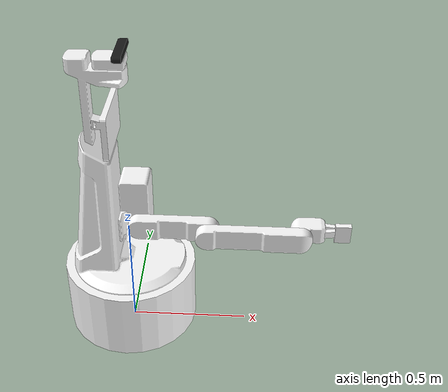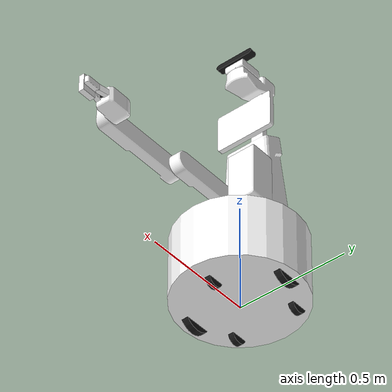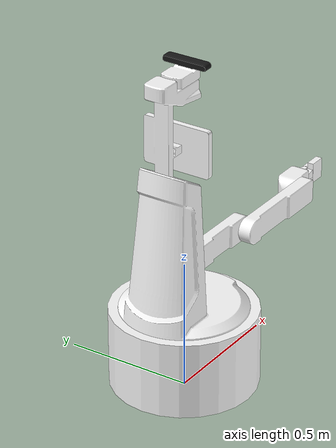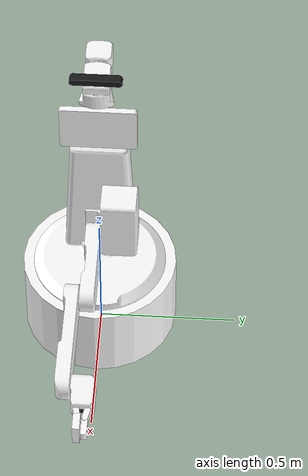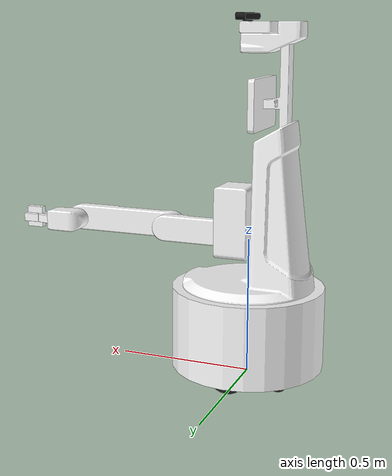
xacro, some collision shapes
<?xml version="1.0" ?>
<robot name="korus" xmlns:xacro="http://www.ros.org/wiki/xacro">
  <xacro:include filename="$(find korus_meta)/resources/urdf/components/diff_drive_base.urdf.xacro"/>
  <xacro:include filename="$(find korus_meta)/resources/urdf/components/upper_body.urdf.xacro"/>
  <xacro:include filename="$(find korus_meta)/resources/urdf/components/arm.urdf.xacro"/>

  <!-- ************************ Base model ************************* -->
  <xacro:diff_drive_base parent="base_footprint" body_mount_link="base_link"/>

  <!-- ************************ Body model ************************* -->
  <xacro:upper_body body_mount_link="base_link" arm_mount_link="torso_lift_link"/>

  <!-- ************************ Arm model ************************* -->
  <xacro:arm arm_mount_link="torso_lift_link"/>
</robot>

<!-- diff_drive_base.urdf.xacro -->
<robot xmlns:xacro="http://www.ros.org/wiki/xacro">
  <xacro:include filename="$(find korus_meta)/resources/urdf/components/materials.urdf.xacro"/>
  <xacro:include filename="$(find korus_meta)/resources/urdf/components/hokuyo_lx30_laser.urdf.xacro"/>

  <!-- ************************** Properties ************************** -->
  <xacro:property name="wheel_bias" value="0.450"/>
  <xacro:property name="wheel_radius" value="0.075"/>
  <xacro:property name="caster_wheel_bias" value="0.294"/>
  <xacro:property name="caster_wheel_radius" value="0.0375"/>

  <!-- ************************** Wheel macros ************************** -->
	<xacro:macro name="drive_wheel" params="name parent length radius off_x off_y off_z">
    <joint name="${name}" type="continuous">
      <parent link="${parent}"/>
      <child link="${name}_link"/>
      <origin rpy="0 0 ${pi/2}" xyz="${off_x} ${off_y} ${off_z}"/>
      <limit effort="48.0" velocity="0.5"/>
    </joint>
	  <link name="${name}_link">
	    <visual>
	      <geometry>
	        <cylinder length="${length}" radius="${radius}"/>
	      </geometry>
	      <origin rpy="0 ${pi/2} 0" xyz="0 0 0"/>
	      <material name="black">
	        <color rgba="0.1 0.1 0.1 1"/>
	      </material>
	    </visual>
	  </link>
	</xacro:macro>
	<xacro:macro name="caster_wheel" params="name parent length radius off_x off_y off_z">
    <joint name="${name}_joint" type="fixed">
      <parent link="${parent}"/>
      <child link="${name}_link"/>
      <origin rpy="0 0 ${pi/2}" xyz="${off_x} ${off_y} ${off_z}"/>
    </joint>
    <link name="${name}_link">
      <visual>
        <geometry>
          <cylinder length="${length}" radius="${radius}"/>
        </geometry>
        <origin rpy="0 ${pi/2} 0" xyz="0 0 0"/>
        <material name="black">
          <color rgba="0.1 0.1 0.1 1"/>
        </material>
      </visual>
    </link>
  </xacro:macro>

  <!-- ************************** Differential drive base macro ************************** -->
  <xacro:macro name="diff_drive_base" params="parent body_mount_link">
    <link name="${parent}"/>
		<joint name="base_joint" type="fixed">
		  <parent link="${parent}"/>
		  <child link="${body_mount_link}"/>
		  <origin rpy="0 0 0" xyz="0.0 0.0 0.075"/>
		</joint>
		<link name="${body_mount_link}">
		  <visual>
		    <geometry>
		      <mesh filename="package://korus_meta/resources/meshes/base_test_model.dae" />
		    </geometry>
		    <origin xyz="0.0 0.0 0.1045" rpy="0 0 0"/>
		    <xacro:insert_block name="material_white"/>
		  </visual>
		  <collision>
	      <geometry>
	        <cylinder length="0.299" radius="0.278"/>
	      </geometry>
	      <origin xyz="0.0 0.0 0.1045" rpy="0 0 0"/>
		  </collision>
		</link>
		<xacro:drive_wheel name="wheel_left" parent="${body_mount_link}" length="0.03" radius="${wheel_radius}" off_x="0.0" off_y="${wheel_bias/2}" off_z="0.0"/>
		<xacro:drive_wheel name="wheel_right" parent="${body_mount_link}" length="0.03" radius="${wheel_radius}" off_x="0.0" off_y="-${wheel_bias/2}" off_z="0.0"/>
		<xacro:caster_wheel name="caster_front" parent="${body_mount_link}" length="0.025" radius="${caster_wheel_radius}" off_x="0.160" off_y="0.0" off_z="-0.0375"/>
		<xacro:caster_wheel name="caster_back_left" parent="${body_mount_link}" length="0.025" radius="${caster_wheel_radius}" off_x="-0.160" off_y="${caster_wheel_bias/2}" off_z="-0.0375"/>
		<xacro:caster_wheel name="caster_back_right" parent="${body_mount_link}" length="0.025" radius="${caster_wheel_radius}" off_x="-0.160" off_y="-${caster_wheel_bias/2}" off_z="-0.0375"/>

	  <!-- ************************** Sensors ************************** -->
	  <xacro:hokuyo_lx30_laser name="laser" parent="base" ros_topic="laser_scan"
	                           update_rate="20" min_angle="${-100.94*pi/180}" max_angle="${100.94*pi/180}">
		  <origin xyz="0.210 0.0 0.21785" rpy="0 0 0"/>
	  </xacro:hokuyo_lx30_laser>

	  <joint name="sonar_front_left" type="fixed">
	    <parent link="${body_mount_link}"/>
	    <child link="sonar_front_left_link"/>
	    <origin xyz="0.12411 0.21496 0.09881" rpy="0 ${-20*pi/180} ${60*pi/180}"/>
	  </joint>
	  <link name="sonar_front_left_link"/>

	  <joint name="sonar_front_middle" type="fixed">
	    <parent link="${body_mount_link}"/>
	    <child link="sonar_front_middle_link"/>
	    <origin xyz="0.24822 0.0 0.09881" rpy="0 ${-20*pi/180} 0"/>
	  </joint>
	  <link name="sonar_front_middle_link"/>

	  <joint name="sonar_front_right" type="fixed">
	    <parent link="${body_mount_link}"/>
	    <child link="sonar_front_right_link"/>
	    <origin xyz="0.12411 -0.21496 0.09881" rpy="0 ${-20*pi/180} ${-60*pi/180}"/>
	  </joint>
	  <link name="sonar_front_right_link"/>

	     <joint name="sonar_back_left" type="fixed">
      <parent link="${body_mount_link}"/>
      <child link="sonar_back_left_link"/>
      <origin xyz="-0.12411 0.21496 0.09881" rpy="0 ${-20*pi/180} ${120*pi/180}"/>
    </joint>
    <link name="sonar_back_left_link"/>

    <joint name="sonar_back_middle" type="fixed">
      <parent link="${body_mount_link}"/>
      <child link="sonar_back_middle_link"/>
      <origin xyz="-0.24822 0.0 0.09881" rpy="0 ${-20*pi/180} ${-180*pi/180}"/>
    </joint>
    <link name="sonar_back_middle_link"/>

    <joint name="sonar_back_right" type="fixed">
      <parent link="${body_mount_link}"/>
      <child link="sonar_back_right_link"/>
      <origin xyz="-0.12411 -0.21496 0.09881" rpy="0 ${-20*pi/180} ${-120*pi/180}"/>
    </joint>
    <link name="sonar_back_right_link"/>

    <joint name="gyro" type="fixed">
      <parent link="${body_mount_link}"/>
      <child link="gyro_link"/>
      <origin xyz="0.080 0.165 0.040" rpy="0 0 0"/>
    </joint>
    <link name="gyro_link"/>

  </xacro:macro>
</robot>

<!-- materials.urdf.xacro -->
<robot xmlns:xacro="http://www.ros.org/wiki/xacro">

	<!-- ************************ Properties ************************** -->
	<xacro:property name="pi" value="3.1415926535897931" />
	<xacro:property name="rad" value="0.0174532925199" /> <!-- pi/180 -->
	<xacro:property name="material_white">
	  <material name="white">
	    <color rgba="1 1 1 1"/>
	  </material>
	</xacro:property>
	<xacro:property name="material_orange">
	  <material name="orange">
	    <color rgba="1.0 0.7 0.0 1"/>
	  </material>
	</xacro:property>
	<xacro:property name="material_red">
	  <material name="red">
	    <color rgba="1.0 0.0 0.0 1"/>
	  </material>
	</xacro:property>
	<xacro:property name="material_grey_blue">
	  <material name="grey_blue">
	    <color rgba="0.4 0.4 1.0 1"/>
	  </material>
	</xacro:property>
	<xacro:property name="material_blue">
	  <material name="blue">
	    <color rgba="0.0 0.0 1.0 1"/>
	  </material>
	</xacro:property>
	<xacro:property name="material_green">
	  <material name="green">
	    <color rgba="0 .8 0 1"/>
	  </material>
	</xacro:property>
	<xacro:property name="material_grey">
	  <material name="grey">
	    <color rgba="0.7 0.7 0.7 1.0"/>
	  </material>
	</xacro:property>
	<xacro:property name="material_black">
	  <material name="black">
	    <color rgba="0.1 0.1 0.1 1"/>
	  </material>
	</xacro:property>
</robot>

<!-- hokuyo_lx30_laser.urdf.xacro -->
<!--  Move this to a ycs_device_descriptions package -->
<robot xmlns:xacro="http://ros.org/wiki/xacro">
  <xacro:macro name="hokuyo_lx30_laser" params="name parent *origin ros_topic update_rate min_angle max_angle">
    <joint name="${name}_joint" type="fixed">
      <axis xyz="0 1 0" />
      <insert_block name="origin" />
      <parent link="${parent}_link"/>
      <child link="${name}_link"/>
    </joint>
    <link name="${name}_link" type="laser">
      <inertial>
        <mass value="0.001" />
        <origin xyz="0 0 0" rpy="0 0 0" />
        <inertia ixx="0.0001" ixy="0" ixz="0" iyy="0.000001" iyz="0" izz="0.0001" />
      </inertial>
<!-- visual and collision is commented out, since the laser is inside the base -->
    </link>
  </xacro:macro>
</robot>

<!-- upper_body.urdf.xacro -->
<robot xmlns:xacro="http://www.ros.org/wiki/xacro">
  <xacro:include filename="$(find korus_meta)/resources/urdf/components/materials.urdf.xacro"/>

  <!-- ************************** Robot body macro ************************** -->
  <xacro:macro name="upper_body" params="body_mount_link arm_mount_link">

    <!-- ************************** Torso *************************** -->
	  <joint name="torso_turn" type="revolute">
	    <parent link="${body_mount_link}"/>
	    <child link="torso_link"/>
	    <origin rpy="0 0 0" xyz="0.0 0.0 0.2665"/>
	    <axis xyz="0 0 1"/>
	    <limit effort="205.0" lower="-${186*rad}" upper="${160*rad}" velocity="${88.7*rad}"/>
	  </joint>
	  <link name="torso_link">
	    <visual>
	      <geometry>
          <mesh filename="package://korus_meta/resources/meshes/turret.dae" />
	      </geometry>
        <origin xyz="0.0 0.0 0.45885" rpy="0 0 0"/>
	      <xacro:insert_block name="material_white" />
	    </visual>
      <collision> <!-- torso turn disk -->
         <geometry>
          <cylinder length="0.025" radius="0.278"/>
        </geometry>
        <origin xyz="0.0 0.0 0.0" rpy="0 0 0"/>
      </collision>
      <collision> <!-- back -->
        <geometry>
           <box size="0.204 0.25746 0.57888" />
        </geometry>
        <origin xyz="-0.13786 0.0 0.30194" rpy="0 0 0"/>
      </collision>
      <collision> <!-- neck -->
        <geometry>
          <box size="0.030 0.060 0.23262"/>
        </geometry>
        <origin xyz="-0.12536  0.0 0.70769" rpy="0 0 0"/>
      </collision>
      <collision> <!-- tablet -->
        <geometry>
          <box size="0.022 0.270 0.1812"/>
        </geometry>
        <origin xyz="-0.04036 0.0 0.6495" rpy="0 0 0"/>
      </collision>
      <collision> <!-- head -->
        <geometry>
          <box size="0.227 0.11872 0.0645" />
        </geometry>
        <origin xyz="-0.07586 0.0 0.85625" rpy="0 0 0"/>
      </collision>
      <collision> <!-- stargazer -->
        <geometry>
          <box size="0.09065 0.090 0.0417" />
        </geometry>
        <origin xyz="-0.14403 0.0 0.909" rpy="0 0 0"/>
      </collision>
	  </link>

    <!-- (Fixed) Reference torso for motion retargeting -->
    <joint name="torso_mo_ret_joint" type="fixed">
      <parent link="${body_mount_link}"/>
      <child link="torso_mo_ret_link"/>
      <origin rpy="0 0 0" xyz="0.0 0.0 0.2665"/>
      <axis xyz="0 0 1"/>
    </joint>
    <link name="torso_mo_ret_link"/>

	  <joint name="turret" type="fixed">
	    <parent link="torso_link"/>
	    <child link="turret_link"/>
	    <origin xyz="-0.13786 0.0 0.0" rpy="0 0 0"/>
	  </joint>
	  <link name="turret_link"/>

	  <joint name="torso_lift_offset" type="fixed">
	    <parent link="turret_link"/>
	    <child link="torso_lift_offset_link"/>
	    <origin xyz="0.10361 0.010 0.170" rpy="0 0 0"/>
	  </joint>
	  <link name="torso_lift_offset_link"/>

	  <joint name="torso_lift" type="prismatic">
	    <parent link="torso_lift_offset_link"/>
	    <child link="${arm_mount_link}"/>
	    <origin xyz="0 0 0" rpy="0 0 0"/>
	    <axis xyz="0 0 1"/>
	    <limit effort="26.0" lower="-0.002" upper="0.1750" velocity="0.038"/>
	  </joint>
	  <link name="${arm_mount_link}"/>

    <!-- ************************** Neck with tablet ************************** -->
	  <joint name="neck" type="fixed">
	    <parent link="turret_link"/>
	    <child link="neck_link"/>
	    <origin xyz="0.0125 0.0 0.59138" rpy="0 0 0"/>
	  </joint>
	  <link name="neck_link"/>

    <joint name="tablet" type="fixed">
      <parent link="neck_link"/>
      <child link="tablet_link"/>
      <origin xyz="0.085 0.0 0.05812" rpy="0 0 0"/>
    </joint>
    <link name="tablet_link"/>

	  <!-- ************************** Head with ASUS Xtion Pro Live and Stargazer ************************** -->
    <joint name="head" type="fixed">
      <parent link="neck_link"/>
      <child link="head_link"/>
      <origin xyz="0.0 0.0 0.23262" rpy="0 0 0"/>
    </joint>
    <link name="head_link"/>

    <joint name="stargazer" type="fixed">
      <parent link="head_link"/>
      <child link="stargazer_link"/>
      <origin xyz="-0.040 0.0 0.1025" rpy="0 0 ${pi}"/>
    </joint>
    <link name="stargazer_link"/>

    <joint name="head_pan" type="revolute">
      <parent link="head_link"/>
      <child link="head_pan_link"/>
      <origin xyz="0.133 0.0 0.0645" rpy="0 0 0"/>
      <axis xyz="0 0 1"/>
      <limit effort="9.0" lower="${-137*rad}" upper="${137*rad}" velocity="${476*rad}"/>
    </joint>
    <link name="head_pan_link">
      <visual>
        <geometry>
          <mesh filename="package://korus_meta/resources/meshes/head_pan.dae" />
        </geometry>
        <origin xyz="-0.0339 0.0 0.02085" rpy="0.0 0.0 0.0"/>
        <xacro:insert_block name="material_white"/>
      </visual>
      <collision>
        <geometry>
          <box size="0.1122 0.090 0.0417"/>
        </geometry>
        <origin xyz="-0.0339 0.0 0.02085" rpy="0.0 0.0 0.0"/>
      </collision>
    </link>

    <joint name="head_tilt" type="revolute">
      <parent link="head_pan_link"/>
      <child link="head_tilt_link"/>
      <origin xyz="0.01 0.0 0.025" rpy="${pi/2} 0 0"/> <!-- x original 0.013 -->
      <axis xyz="0 0 1"/>
      <limit effort="9.0" lower="${-92*rad}" upper="${32*rad}" velocity="${476*rad}"/>
    </joint>
    <link name="head_tilt_link"/>

    <joint name="sensor_3d" type="fixed">
      <parent link="head_tilt_link"/>
      <child link="sensor_3d_link"/>
      <!-- adds to yaw, because the xtion is mounted on its surface which is inclined (approx. 2 deg) -->
      <origin xyz="0.0 0.0 0.0" rpy="${-pi/2} 0 0.034"/>
    </joint>
    <link name="sensor_3d_link">
      <visual>
        <geometry>
           <mesh filename="package://korus_meta/resources/meshes/xtionpro_w_mount.dae"/>
        </geometry>
        <origin xyz="0.0 0.0 0.0225" rpy="0 0 0" />
        <xacro:insert_block name="material_black"/>
      </visual>
      <collision>
        <origin xyz="0.0 0.0032 0.0291" rpy="0 0 0" />
        <geometry>
          <box size="0.036 0.180 0.0298"/>
        </geometry>
      </collision>
    </link>

    <joint name="sensor_3d_fixed" type="fixed"> <!-- used for head pose control -->
      <parent link="head_link"/>
      <child link="sensor_3d_fixed_link"/>
      <origin xyz="0.143 0.0 0.1225" rpy="0 0 0"/>
    </joint>
    <link name="sensor_3d_fixed_link"/>

    <joint name="sensor_3d_depth_joint" type="fixed">
      <origin xyz="0.019 0.0435 0.0315" rpy="0 0 0" />
      <parent link="sensor_3d_link" />
      <child link="sensor_3d_depth_frame" />
    </joint>
    <link name="sensor_3d_depth_frame"/>

    <joint name="sensor_3d_depth_optical_joint" type="fixed">
      <origin xyz="0 0 0" rpy="${-pi/2} 0 ${-pi/2}" />
      <parent link="sensor_3d_depth_frame" />
      <child link="sensor_3d_depth_optical_frame" />
    </joint>
    <link name="sensor_3d_depth_optical_frame"/>

    <joint name="sensor_3d_rgb_joint" type="fixed">
      <origin xyz="0.0 0.015 0.0315" rpy="0 0 0" />
      <parent link="sensor_3d_link" />
      <child link="sensor_3d_rgb_frame" />
    </joint>
    <link name="sensor_3d_rgb_frame"/>

    <joint name="sensor_3d_rgb_optical_joint" type="fixed">
      <origin xyz="0 0 0" rpy="${-pi/2} 0 ${-pi/2}" />
      <parent link="sensor_3d_rgb_frame" />
      <child link="sensor_3d_rgb_optical_frame" />
    </joint>
    <link name="sensor_3d_rgb_optical_frame"/>
  </xacro:macro>
</robot>

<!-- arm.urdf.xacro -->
<robot xmlns:xacro="http://www.ros.org/wiki/xacro">
  <xacro:include filename="$(find korus_meta)/resources/urdf/components/materials.urdf.xacro"/>

  <!-- ************************ Arm macro ************************* -->
  <xacro:macro name="arm" params="arm_mount_link">
    <joint name="arm_mount" type="fixed">
      <parent link="${arm_mount_link}"/>
      <child link="shoulder_link"/>
      <origin xyz="0.08225 0.0 0.0" rpy="${pi/2} 0.0 0.0"/>
    </joint>
    <link name="shoulder_link">
      <visual>
        <geometry>
          <mesh filename="package://korus_meta/resources/meshes/shoulder.dae" />
        </geometry>
        <origin xyz="-0.020 0.070 -0.034" rpy="${-pi/2} 0 0"/>
        <xacro:insert_block name="material_white"/>
      </visual>
      <collision>
        <geometry>
          <box size="0.122 0.254 0.131"/>
        </geometry>
        <origin xyz="-0.020 0.070 -0.0655" rpy="0 0 0"/>
       </collision>
    </link>

	  <joint name="shoulder" type="revolute">
	    <parent link="shoulder_link"/>
	    <child link="upper_arm_link"/>
      <origin xyz="0 0 0" rpy="0 0 0"/>
	    <axis xyz="0 0 1"/>
	    <limit effort="250.0" lower="${-70*rad}" upper="${92*rad}" velocity="${73*rad}"/>
	  </joint>
	  <link name="upper_arm_link">
	    <visual>
	      <geometry>
          <mesh filename="package://korus_meta/resources/meshes/upper_arm.dae" />
	      </geometry>
	      <origin xyz="0.1425 0.001 0.0275" rpy="${pi/2} ${pi} ${pi/2}"/>
	      <xacro:insert_block name="material_white" />
	    </visual>
      <collision>
        <geometry>
          <box size="0.378 0.095 0.055"/>
        </geometry>
        <origin xyz="0.145 0.0 0.028" rpy="0 0 0"/>
       </collision>
	  </link>

	  <joint name="elbow" type="revolute">
	    <parent link="upper_arm_link"/>
	    <child link="lower_arm_link"/>
	    <origin xyz="0.283 0.0 0.055" rpy="0 0 0"/>
	    <axis xyz="0 0 1"/>
	    <limit effort="200.0" lower="${-180*rad}" upper="${92*rad}" velocity="${91*rad}"/>
	  </joint>
	  <link name="lower_arm_link">
	    <visual>
	      <geometry>
          <mesh filename="package://korus_meta/resources/meshes/lower_arm.dae" />
	      </geometry>
	      <origin xyz="0.19 0.002 0.027" rpy="${pi/2} ${pi} ${pi/2}"/>
	      <xacro:insert_block name="material_white" />
	    </visual>
      <collision>
        <geometry>
          <box size="0.477 0.095 0.057"/>
        </geometry>
        <origin xyz="0.19426 0.00 0.0285" rpy="0 0 0"/>
      </collision>
	  </link>

	  <joint name="wrist" type="revolute">
	    <parent link="lower_arm_link"/>
	    <child link="wrist_link"/>
	    <origin xyz="0.382 0.0 0.0" rpy="0 0 0"/>
	    <axis xyz="0 0 1"/>
	    <limit effort="51.0" lower="${-100*rad}" upper="${100*rad}" velocity="${72.5*rad}"/>
	  </joint>
	  <link name="wrist_link"/>

  	<!--   Endeffector (gripper)  -->
	  <joint name="palm" type="fixed">
	    <parent link="wrist_link"/>
	    <child link="palm_link"/>
	    <origin xyz="0.0 0.0 -0.045" rpy="0 0 0"/>
	  </joint>
	  <link name="palm_link">
	    <visual>
	      <geometry>
          <mesh filename="package://korus_meta/resources/meshes/palm.dae" />
	      </geometry>
	      <origin xyz="0.0395 0.001 0.0025" rpy="${-pi/2} 0 0"/>
        <xacro:insert_block name="material_white"/>
      </visual>
      <collision>
        <geometry>
          <cylinder length="0.0854" radius="0.038"/>
        </geometry>
        <origin xyz="0.0 0.0 0.0035" rpy="0 0 0"/>
      </collision>
      <collision>
        <geometry>
          <box size="0.1044 0.077 0.0804"/>
        </geometry>
        <origin xyz="0.0522 0.0 0.0" rpy="0 0 0"/>
      </collision>
	  </link>

    <joint name="gripper_center" type="fixed">
      <parent link="palm_link"/>
      <child link="gripper_center_link"/>
      <origin xyz="0.15 0.0 0.0" rpy="0 0 0"/>
    </joint>
    <link name="gripper_center_link"/>

	  <joint name="gripper" type="revolute">
	    <parent link="palm_link"/>
	    <child link="gripper_link"/>
	    <origin xyz="0.08 0.0 0.0" rpy="${-pi/2} 0 0"/>
	    <axis xyz="0 0 1"/>
	    <limit effort="33.4" lower="${-2*rad}" upper="${78*rad}" velocity="${80.8*rad}"/>
	  </joint>
	  <link name="gripper_link"/>

    <joint name="finger_left_knuckle_1" type="revolute">
      <parent link="palm_link"/>
      <child link="finger_left_knuckle_1_link"/>
      <origin xyz="0.0925 0.0 -0.022" rpy="${pi/2} ${-10*rad} 0"/>
      <axis xyz="0 0 1"/>
      <limit effort="33.4" lower="${-78*rad}" upper="${2*rad}" velocity="${80.8*rad}"/>
    </joint>
	  <link name="finger_left_knuckle_1_link">
      <visual>
        <geometry>
          <mesh filename="package://korus_meta/resources/meshes/finger01.dae" />
        </geometry>
	      <origin xyz="0.02975 0.0 0.0" rpy="0 0 0"/>
	      <xacro:insert_block name="material_white"/>
	    </visual>
      <collision>
        <geometry>
          <box size="0.0595 0.0247 0.0306"/>
        </geometry>
        <origin xyz="0.02975 0.0 0.0" rpy="0 0 0"/>
      </collision>
	  </link>
    <joint name="finger_left_knuckle_2" type="revolute">
      <parent link="finger_left_knuckle_1_link"/>
      <child link="finger_left_knuckle_2_link"/>
      <origin xyz="0.051 0.0 0.0" rpy="0 0 ${-10*rad}"/>
      <axis xyz="0 0 1"/>
      <limit effort="33.4" lower="${-2*rad}" upper="${78*rad}" velocity="${80.8*rad}"/>
    </joint>
    <link name="finger_left_knuckle_2_link">
      <visual>
        <geometry>
          <mesh filename="package://korus_meta/resources/meshes/finger02.dae" />
        </geometry>
        <origin xyz="0.0325 0.0 0.0" rpy="0 0 0"/>
        <xacro:insert_block name="material_white"/>
      </visual>
      <collision>
        <geometry>
          <box size="0.065 0.0247 0.0306"/>
        </geometry>
        <origin xyz="0.0325 0.0 0.0" rpy="0 0 0"/>
      </collision>
    </link>
    <joint name="finger_left_tip" type="fixed">
      <parent link="finger_left_knuckle_2_link"/>
      <child link="finger_left_tip_link"/>
      <origin xyz="0.065 0.0 0.0" rpy="0 0 0"/>
    </joint>
    <link name="finger_left_tip_link"/>

    <joint name="finger_right_knuckle_1" type="revolute">
      <parent link="palm_link"/>
      <child link="finger_right_knuckle_1_link"/>
      <origin xyz="0.0925 0.0 0.022" rpy="${-pi/2} ${10*rad} 0.0"/>
      <axis xyz="0 0 1"/>
      <limit effort="33.4" lower="${-78*rad}" upper="${2*rad}" velocity="${80.8*rad}"/>
    </joint>
    <link name="finger_right_knuckle_1_link">
      <visual>
        <geometry>
          <mesh filename="package://korus_meta/resources/meshes/finger01.dae" />
        </geometry>
        <origin xyz="0.02975 0.0 0.0" rpy="0 0 0"/>
        <xacro:insert_block name="material_white"/>
      </visual>
      <collision>
        <geometry>
          <box size="0.0595 0.0247 0.0306"/>
        </geometry>
        <origin xyz="0.02975 0.0 0.0" rpy="0 0 0"/>
      </collision>
    </link>
    <joint name="finger_right_knuckle_2" type="revolute">
      <parent link="finger_right_knuckle_1_link"/>
      <child link="finger_right_knuckle_2_link"/>
      <origin xyz="0.051 0.0 0.0" rpy="0 0 ${-10*rad}"/>
      <axis xyz="0 0 1"/>
      <limit effort="33.4" lower="${-2*rad}" upper="${78*rad}" velocity="${80.8*rad}"/>
    </joint>
    <link name="finger_right_knuckle_2_link">
      <visual>
        <geometry>
          <box size="0.065 0.0247 0.08"/>
        </geometry>
        <origin xyz="0.0325 0.0 0.0" rpy="0 0 0"/>
        <xacro:insert_block name="material_white"/>
      </visual>
      <collision>
        <geometry>
          <box size="0.065 0.0247 0.08"/>
        </geometry>
        <origin xyz="0.0325 0.0 0.0" rpy="0 0 0"/>
      </collision>
    </link>
    <joint name="finger_right_tip" type="fixed">
      <parent link="finger_right_knuckle_2_link"/>
      <child link="finger_right_tip_link"/>
      <origin xyz="0.065 0.0 0.0" rpy="0 0 0"/>
    </joint>
    <link name="finger_right_tip_link"/>

    <joint name="gripper_camera" type="fixed">
      <parent link="palm_link"/>
      <child link="gripper_camera_link"/>
      <origin xyz="0.10015 0 0" rpy="0.0 ${pi/2} 0.0"/>
    </joint>
    <link name="gripper_camera_link">
      <visual>
        <geometry>
          <cylinder length="0.01" radius="0.01"/>
        </geometry>
        <origin xyz="0.0 0.0 0.0" rpy="0 0 0"/>
        <xacro:insert_block name="material_black"/>
      </visual>
      <collision>
        <geometry>
          <cylinder length="0.01" radius="0.01"/>
        </geometry>
        <origin xyz="0.0 0.0 0.0" rpy="0 0 0"/>
      </collision>
    </link>
  </xacro:macro>
</robot>
